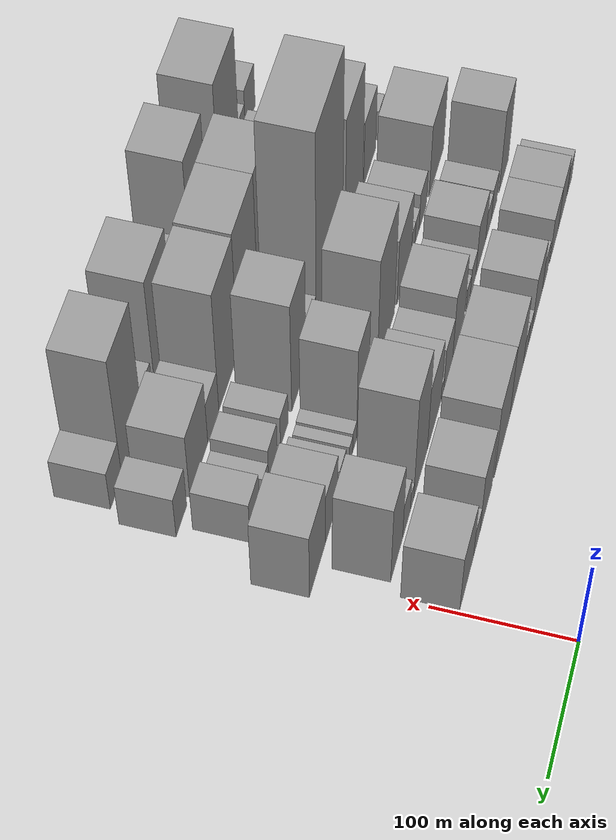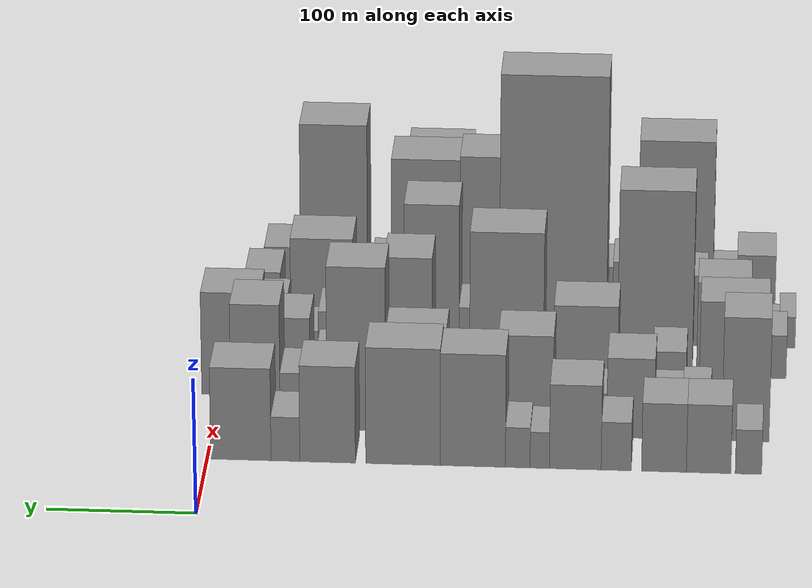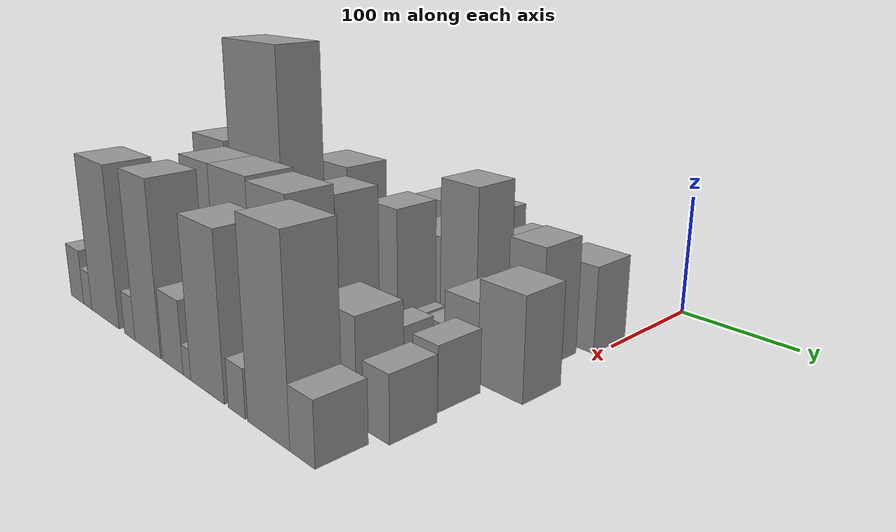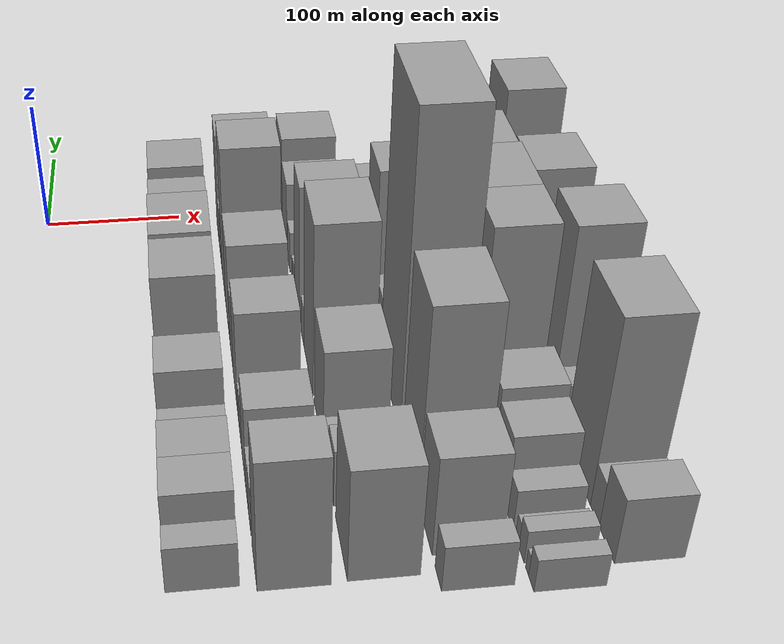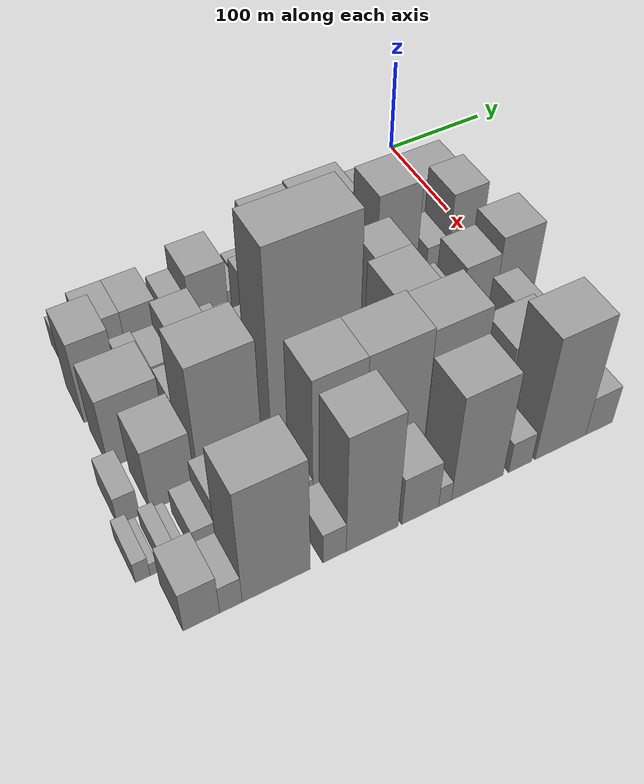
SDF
<sdf version="1.6">
 <world name="default">
  <model name="building_15">
   <static>1</static>
   <pose>100.0000 -365.7893 0 0.000000 0.000000 0.000000</pose>
   <link name="link">
    <pose>0 0 16.50 0 0 0</pose>
    <collision name="collision"><geometry><box><size>40.0000 17.7125 33.0000</size></box></geometry></collision>
    <visual name="visual">
     <cast_shadows>0</cast_shadows>
     <geometry><box><size>40.0000 17.7125 33.0000</size></box></geometry>
     <material>
      <script>
       <uri>model://grey_wall/materials/scripts</uri>
       <uri>model://grey_wall/materials/textures</uri>
       <name>vrc/grey_wall</name>
      </script>
     </material>
    </visual>
   </link>
  </model>
  <model name="building_16">
   <static>1</static>
   <pose>100.0000 -338.9634 0 0.000000 0.000000 0.000000</pose>
   <link name="link">
    <pose>0 0 25.50 0 0 0</pose>
    <collision name="collision"><geometry><box><size>40.0000 29.9394 51.0000</size></box></geometry></collision>
    <visual name="visual">
     <cast_shadows>0</cast_shadows>
     <geometry><box><size>40.0000 29.9394 51.0000</size></box></geometry>
     <material>
      <script>
       <uri>model://grey_wall/materials/scripts</uri>
       <uri>model://grey_wall/materials/textures</uri>
       <name>vrc/grey_wall</name>
      </script>
     </material>
    </visual>
   </link>
  </model>
  <model name="building_17">
   <static>1</static>
   <pose>100.0000 -308.8992 0 0.000000 0.000000 0.000000</pose>
   <link name="link">
    <pose>0 0 25.50 0 0 0</pose>
    <collision name="collision"><geometry><box><size>40.0000 30.1890 51.0000</size></box></geometry></collision>
    <visual name="visual">
     <cast_shadows>0</cast_shadows>
     <geometry><box><size>40.0000 30.1890 51.0000</size></box></geometry>
     <material>
      <script>
       <uri>model://grey_wall/materials/scripts</uri>
       <uri>model://grey_wall/materials/textures</uri>
       <name>vrc/grey_wall</name>
      </script>
     </material>
    </visual>
   </link>
  </model>
  <model name="building_18">
   <static>1</static>
   <pose>100.0000 -276.6746 0 0.000000 0.000000 0.000000</pose>
   <link name="link">
    <pose>0 0 18.00 0 0 0</pose>
    <collision name="collision"><geometry><box><size>40.0000 20.2602 36.0000</size></box></geometry></collision>
    <visual name="visual">
     <cast_shadows>0</cast_shadows>
     <geometry><box><size>40.0000 20.2602 36.0000</size></box></geometry>
     <material>
      <script>
       <uri>model://grey_wall/materials/scripts</uri>
       <uri>model://grey_wall/materials/textures</uri>
       <name>vrc/grey_wall</name>
      </script>
     </material>
    </visual>
   </link>
  </model>
  <model name="building_19">
   <static>1</static>
   <pose>100.0000 -249.0902 0 0.000000 0.000000 0.000000</pose>
   <link name="link">
    <pose>0 0 31.50 0 0 0</pose>
    <collision name="collision"><geometry><box><size>40.0000 34.9087 63.0000</size></box></geometry></collision>
    <visual name="visual">
     <cast_shadows>0</cast_shadows>
     <geometry><box><size>40.0000 34.9087 63.0000</size></box></geometry>
     <material>
      <script>
       <uri>model://grey_wall/materials/scripts</uri>
       <uri>model://grey_wall/materials/textures</uri>
       <name>vrc/grey_wall</name>
      </script>
     </material>
    </visual>
   </link>
  </model>
  <model name="building_20">
   <static>1</static>
   <pose>100.0000 -225.1248 0 0.000000 0.000000 0.000000</pose>
   <link name="link">
    <pose>0 0 13.50 0 0 0</pose>
    <collision name="collision"><geometry><box><size>40.0000 13.0221 27.0000</size></box></geometry></collision>
    <visual name="visual">
     <cast_shadows>0</cast_shadows>
     <geometry><box><size>40.0000 13.0221 27.0000</size></box></geometry>
     <material>
      <script>
       <uri>model://grey_wall/materials/scripts</uri>
       <uri>model://grey_wall/materials/textures</uri>
       <name>vrc/grey_wall</name>
      </script>
     </material>
    </visual>
   </link>
  </model>
  <model name="building_21">
   <static>1</static>
   <pose>100.0000 -210.2478 0 0.000000 0.000000 0.000000</pose>
   <link name="link">
    <pose>0 0 15.00 0 0 0</pose>
    <collision name="collision"><geometry><box><size>40.0000 16.7318 30.0000</size></box></geometry></collision>
    <visual name="visual">
     <cast_shadows>0</cast_shadows>
     <geometry><box><size>40.0000 16.7318 30.0000</size></box></geometry>
     <material>
      <script>
       <uri>model://grey_wall/materials/scripts</uri>
       <uri>model://grey_wall/materials/textures</uri>
       <name>vrc/grey_wall</name>
      </script>
     </material>
    </visual>
   </link>
  </model>
  <model name="building_22">
   <static>1</static>
   <pose>100.0000 -179.8507 0 0.000000 0.000000 0.000000</pose>
   <link name="link">
    <pose>0 0 42.00 0 0 0</pose>
    <collision name="collision"><geometry><box><size>40.0000 44.0624 84.0000</size></box></geometry></collision>
    <visual name="visual">
     <cast_shadows>0</cast_shadows>
     <geometry><box><size>40.0000 44.0624 84.0000</size></box></geometry>
     <material>
      <script>
       <uri>model://grey_wall/materials/scripts</uri>
       <uri>model://grey_wall/materials/textures</uri>
       <name>vrc/grey_wall</name>
      </script>
     </material>
    </visual>
   </link>
  </model>
  <model name="building_23">
   <static>1</static>
   <pose>100.0000 -132.6121 0 0.000000 0.000000 0.000000</pose>
   <link name="link">
    <pose>0 0 43.50 0 0 0</pose>
    <collision name="collision"><geometry><box><size>40.0000 50.4148 87.0000</size></box></geometry></collision>
    <visual name="visual">
     <cast_shadows>0</cast_shadows>
     <geometry><box><size>40.0000 50.4148 87.0000</size></box></geometry>
     <material>
      <script>
       <uri>model://grey_wall/materials/scripts</uri>
       <uri>model://grey_wall/materials/textures</uri>
       <name>vrc/grey_wall</name>
      </script>
     </material>
    </visual>
   </link>
  </model>
  <model name="building_24">
   <static>1</static>
   <pose>100.0000 -81.5490 0 0.000000 0.000000 0.000000</pose>
   <link name="link">
    <pose>0 0 36.00 0 0 0</pose>
    <collision name="collision"><geometry><box><size>40.0000 37.7114 72.0000</size></box></geometry></collision>
    <visual name="visual">
     <cast_shadows>0</cast_shadows>
     <geometry><box><size>40.0000 37.7114 72.0000</size></box></geometry>
     <material>
      <script>
       <uri>model://grey_wall/materials/scripts</uri>
       <uri>model://grey_wall/materials/textures</uri>
       <name>vrc/grey_wall</name>
      </script>
     </material>
    </visual>
   </link>
  </model>
  <model name="building_25">
   <static>1</static>
   <pose>100.0000 -52.9410 0 0.000000 0.000000 0.000000</pose>
   <link name="link">
    <pose>0 0 16.50 0 0 0</pose>
    <collision name="collision"><geometry><box><size>40.0000 19.5046 33.0000</size></box></geometry></collision>
    <visual name="visual">
     <cast_shadows>0</cast_shadows>
     <geometry><box><size>40.0000 19.5046 33.0000</size></box></geometry>
     <material>
      <script>
       <uri>model://grey_wall/materials/scripts</uri>
       <uri>model://grey_wall/materials/textures</uri>
       <name>vrc/grey_wall</name>
      </script>
     </material>
    </visual>
   </link>
  </model>
  <model name="building_26">
   <static>1</static>
   <pose>100.0000 -22.6887 0 0.000000 0.000000 0.000000</pose>
   <link name="link">
    <pose>0 0 34.50 0 0 0</pose>
    <collision name="collision"><geometry><box><size>40.0000 40.9999 69.0000</size></box></geometry></collision>
    <visual name="visual">
     <cast_shadows>0</cast_shadows>
     <geometry><box><size>40.0000 40.9999 69.0000</size></box></geometry>
     <material>
      <script>
       <uri>model://grey_wall/materials/scripts</uri>
       <uri>model://grey_wall/materials/textures</uri>
       <name>vrc/grey_wall</name>
      </script>
     </material>
    </visual>
   </link>
  </model>
  <model name="building_62">
   <static>1</static>
   <pose>149.0000 -363.1869 0 0.000000 0.000000 0.000000</pose>
   <link name="link">
    <pose>0 0 46.50 0 0 0</pose>
    <collision name="collision"><geometry><box><size>40.0000 32.1077 93.0000</size></box></geometry></collision>
    <visual name="visual">
     <cast_shadows>0</cast_shadows>
     <geometry><box><size>40.0000 32.1077 93.0000</size></box></geometry>
     <material>
      <script>
       <uri>model://grey_wall/materials/scripts</uri>
       <uri>model://grey_wall/materials/textures</uri>
       <name>vrc/grey_wall</name>
      </script>
     </material>
    </visual>
   </link>
  </model>
  <model name="building_63">
   <static>1</static>
   <pose>149.0000 -329.6222 0 0.000000 0.000000 0.000000</pose>
   <link name="link">
    <pose>0 0 18.00 0 0 0</pose>
    <collision name="collision"><geometry><box><size>40.0000 19.0217 36.0000</size></box></geometry></collision>
    <visual name="visual">
     <cast_shadows>0</cast_shadows>
     <geometry><box><size>40.0000 19.0217 36.0000</size></box></geometry>
     <material>
      <script>
       <uri>model://grey_wall/materials/scripts</uri>
       <uri>model://grey_wall/materials/textures</uri>
       <name>vrc/grey_wall</name>
      </script>
     </material>
    </visual>
   </link>
  </model>
  <model name="building_64">
   <static>1</static>
   <pose>149.0000 -310.6363 0 0.000000 0.000000 0.000000</pose>
   <link name="link">
    <pose>0 0 16.50 0 0 0</pose>
    <collision name="collision"><geometry><box><size>40.0000 18.9501 33.0000</size></box></geometry></collision>
    <visual name="visual">
     <cast_shadows>0</cast_shadows>
     <geometry><box><size>40.0000 18.9501 33.0000</size></box></geometry>
     <material>
      <script>
       <uri>model://grey_wall/materials/scripts</uri>
       <uri>model://grey_wall/materials/textures</uri>
       <name>vrc/grey_wall</name>
      </script>
     </material>
    </visual>
   </link>
  </model>
  <model name="building_65">
   <static>1</static>
   <pose>149.0000 -284.9238 0 0.000000 0.000000 0.000000</pose>
   <link name="link">
    <pose>0 0 30.00 0 0 0</pose>
    <collision name="collision"><geometry><box><size>40.0000 32.4750 60.0000</size></box></geometry></collision>
    <visual name="visual">
     <cast_shadows>0</cast_shadows>
     <geometry><box><size>40.0000 32.4750 60.0000</size></box></geometry>
     <material>
      <script>
       <uri>model://grey_wall/materials/scripts</uri>
       <uri>model://grey_wall/materials/textures</uri>
       <name>vrc/grey_wall</name>
      </script>
     </material>
    </visual>
   </link>
  </model>
  <model name="building_66">
   <static>1</static>
   <pose>149.0000 -259.5298 0 0.000000 0.000000 0.000000</pose>
   <link name="link">
    <pose>0 0 16.50 0 0 0</pose>
    <collision name="collision"><geometry><box><size>40.0000 18.3131 33.0000</size></box></geometry></collision>
    <visual name="visual">
     <cast_shadows>0</cast_shadows>
     <geometry><box><size>40.0000 18.3131 33.0000</size></box></geometry>
     <material>
      <script>
       <uri>model://grey_wall/materials/scripts</uri>
       <uri>model://grey_wall/materials/textures</uri>
       <name>vrc/grey_wall</name>
      </script>
     </material>
    </visual>
   </link>
  </model>
  <model name="building_67">
   <static>1</static>
   <pose>149.0000 -243.7359 0 0.000000 0.000000 0.000000</pose>
   <link name="link">
    <pose>0 0 13.50 0 0 0</pose>
    <collision name="collision"><geometry><box><size>40.0000 13.2746 27.0000</size></box></geometry></collision>
    <visual name="visual">
     <cast_shadows>0</cast_shadows>
     <geometry><box><size>40.0000 13.2746 27.0000</size></box></geometry>
     <material>
      <script>
       <uri>model://grey_wall/materials/scripts</uri>
       <uri>model://grey_wall/materials/textures</uri>
       <name>vrc/grey_wall</name>
      </script>
     </material>
    </visual>
   </link>
  </model>
  <model name="building_68">
   <static>1</static>
   <pose>149.0000 -213.2330 0 0.000000 0.000000 0.000000</pose>
   <link name="link">
    <pose>0 0 37.50 0 0 0</pose>
    <collision name="collision"><geometry><box><size>40.0000 37.7311 75.0000</size></box></geometry></collision>
    <visual name="visual">
     <cast_shadows>0</cast_shadows>
     <geometry><box><size>40.0000 37.7311 75.0000</size></box></geometry>
     <material>
      <script>
       <uri>model://grey_wall/materials/scripts</uri>
       <uri>model://grey_wall/materials/textures</uri>
       <name>vrc/grey_wall</name>
      </script>
     </material>
    </visual>
   </link>
  </model>
  <model name="building_69">
   <static>1</static>
   <pose>149.0000 -180.6209 0 0.000000 0.000000 0.000000</pose>
   <link name="link">
    <pose>0 0 25.50 0 0 0</pose>
    <collision name="collision"><geometry><box><size>40.0000 27.4931 51.0000</size></box></geometry></collision>
    <visual name="visual">
     <cast_shadows>0</cast_shadows>
     <geometry><box><size>40.0000 27.4931 51.0000</size></box></geometry>
     <material>
      <script>
       <uri>model://grey_wall/materials/scripts</uri>
       <uri>model://grey_wall/materials/textures</uri>
       <name>vrc/grey_wall</name>
      </script>
     </material>
    </visual>
   </link>
  </model>
  <model name="building_70">
   <static>1</static>
   <pose>149.0000 -162.8369 0 0.000000 0.000000 0.000000</pose>
   <link name="link">
    <pose>0 0 9.00 0 0 0</pose>
    <collision name="collision"><geometry><box><size>40.0000 8.0749 18.0000</size></box></geometry></collision>
    <visual name="visual">
     <cast_shadows>0</cast_shadows>
     <geometry><box><size>40.0000 8.0749 18.0000</size></box></geometry>
     <material>
      <script>
       <uri>model://grey_wall/materials/scripts</uri>
       <uri>model://grey_wall/materials/textures</uri>
       <name>vrc/grey_wall</name>
      </script>
     </material>
    </visual>
   </link>
  </model>
  <model name="building_71">
   <static>1</static>
   <pose>149.0000 -138.1704 0 0.000000 0.000000 0.000000</pose>
   <link name="link">
    <pose>0 0 37.50 0 0 0</pose>
    <collision name="collision"><geometry><box><size>40.0000 41.2582 75.0000</size></box></geometry></collision>
    <visual name="visual">
     <cast_shadows>0</cast_shadows>
     <geometry><box><size>40.0000 41.2582 75.0000</size></box></geometry>
     <material>
      <script>
       <uri>model://grey_wall/materials/scripts</uri>
       <uri>model://grey_wall/materials/textures</uri>
       <name>vrc/grey_wall</name>
      </script>
     </material>
    </visual>
   </link>
  </model>
  <model name="building_72">
   <static>1</static>
   <pose>149.0000 -97.4613 0 0.000000 0.000000 0.000000</pose>
   <link name="link">
    <pose>0 0 61.50 0 0 0</pose>
    <collision name="collision"><geometry><box><size>40.0000 40.1599 123.0000</size></box></geometry></collision>
    <visual name="visual">
     <cast_shadows>0</cast_shadows>
     <geometry><box><size>40.0000 40.1599 123.0000</size></box></geometry>
     <material>
      <script>
       <uri>model://grey_wall/materials/scripts</uri>
       <uri>model://grey_wall/materials/textures</uri>
       <name>vrc/grey_wall</name>
      </script>
     </material>
    </visual>
   </link>
  </model>
  <model name="building_73">
   <static>1</static>
   <pose>149.0000 -72.3114 0 0.000000 0.000000 0.000000</pose>
   <link name="link">
    <pose>0 0 10.50 0 0 0</pose>
    <collision name="collision"><geometry><box><size>40.0000 10.1401 21.0000</size></box></geometry></collision>
    <visual name="visual">
     <cast_shadows>0</cast_shadows>
     <geometry><box><size>40.0000 10.1401 21.0000</size></box></geometry>
     <material>
      <script>
       <uri>model://grey_wall/materials/scripts</uri>
       <uri>model://grey_wall/materials/textures</uri>
       <name>vrc/grey_wall</name>
      </script>
     </material>
    </visual>
   </link>
  </model>
  <model name="building_74">
   <static>1</static>
   <pose>149.0000 -56.3199 0 0.000000 0.000000 0.000000</pose>
   <link name="link">
    <pose>0 0 21.00 0 0 0</pose>
    <collision name="collision"><geometry><box><size>40.0000 21.8428 42.0000</size></box></geometry></collision>
    <visual name="visual">
     <cast_shadows>0</cast_shadows>
     <geometry><box><size>40.0000 21.8428 42.0000</size></box></geometry>
     <material>
      <script>
       <uri>model://grey_wall/materials/scripts</uri>
       <uri>model://grey_wall/materials/textures</uri>
       <name>vrc/grey_wall</name>
      </script>
     </material>
    </visual>
   </link>
  </model>
  <model name="building_75">
   <static>1</static>
   <pose>149.0000 -28.4880 0 0.000000 0.000000 0.000000</pose>
   <link name="link">
    <pose>0 0 46.50 0 0 0</pose>
    <collision name="collision"><geometry><box><size>40.0000 33.8210 93.0000</size></box></geometry></collision>
    <visual name="visual">
     <cast_shadows>0</cast_shadows>
     <geometry><box><size>40.0000 33.8210 93.0000</size></box></geometry>
     <material>
      <script>
       <uri>model://grey_wall/materials/scripts</uri>
       <uri>model://grey_wall/materials/textures</uri>
       <name>vrc/grey_wall</name>
      </script>
     </material>
    </visual>
   </link>
  </model>
  <model name="building_113">
   <static>1</static>
   <pose>198.0000 -354.2277 0 0.000000 0.000000 0.000000</pose>
   <link name="link">
    <pose>0 0 40.50 0 0 0</pose>
    <collision name="collision"><geometry><box><size>40.0000 47.3804 81.0000</size></box></geometry></collision>
    <visual name="visual">
     <cast_shadows>0</cast_shadows>
     <geometry><box><size>40.0000 47.3804 81.0000</size></box></geometry>
     <material>
      <script>
       <uri>model://grey_wall/materials/scripts</uri>
       <uri>model://grey_wall/materials/textures</uri>
       <name>vrc/grey_wall</name>
      </script>
     </material>
    </visual>
   </link>
  </model>
  <model name="building_114">
   <static>1</static>
   <pose>198.0000 -310.0028 0 0.000000 0.000000 0.000000</pose>
   <link name="link">
    <pose>0 0 21.00 0 0 0</pose>
    <collision name="collision"><geometry><box><size>40.0000 23.0694 42.0000</size></box></geometry></collision>
    <visual name="visual">
     <cast_shadows>0</cast_shadows>
     <geometry><box><size>40.0000 23.0694 42.0000</size></box></geometry>
     <material>
      <script>
       <uri>model://grey_wall/materials/scripts</uri>
       <uri>model://grey_wall/materials/textures</uri>
       <name>vrc/grey_wall</name>
      </script>
     </material>
    </visual>
   </link>
  </model>
  <model name="building_115">
   <static>1</static>
   <pose>198.0000 -292.0962 0 0.000000 0.000000 0.000000</pose>
   <link name="link">
    <pose>0 0 13.50 0 0 0</pose>
    <collision name="collision"><geometry><box><size>40.0000 12.7439 27.0000</size></box></geometry></collision>
    <visual name="visual">
     <cast_shadows>0</cast_shadows>
     <geometry><box><size>40.0000 12.7439 27.0000</size></box></geometry>
     <material>
      <script>
       <uri>model://grey_wall/materials/scripts</uri>
       <uri>model://grey_wall/materials/textures</uri>
       <name>vrc/grey_wall</name>
      </script>
     </material>
    </visual>
   </link>
  </model>
  <model name="building_116">
   <static>1</static>
   <pose>198.0000 -280.1377 0 0.000000 0.000000 0.000000</pose>
   <link name="link">
    <pose>0 0 13.50 0 0 0</pose>
    <collision name="collision"><geometry><box><size>40.0000 11.1730 27.0000</size></box></geometry></collision>
    <visual name="visual">
     <cast_shadows>0</cast_shadows>
     <geometry><box><size>40.0000 11.1730 27.0000</size></box></geometry>
     <material>
      <script>
       <uri>model://grey_wall/materials/scripts</uri>
       <uri>model://grey_wall/materials/textures</uri>
       <name>vrc/grey_wall</name>
      </script>
     </material>
    </visual>
   </link>
  </model>
  <model name="building_117">
   <static>1</static>
   <pose>198.0000 -252.4284 0 0.000000 0.000000 0.000000</pose>
   <link name="link">
    <pose>0 0 37.50 0 0 0</pose>
    <collision name="collision"><geometry><box><size>40.0000 44.2457 75.0000</size></box></geometry></collision>
    <visual name="visual">
     <cast_shadows>0</cast_shadows>
     <geometry><box><size>40.0000 44.2457 75.0000</size></box></geometry>
     <material>
      <script>
       <uri>model://grey_wall/materials/scripts</uri>
       <uri>model://grey_wall/materials/textures</uri>
       <name>vrc/grey_wall</name>
      </script>
     </material>
    </visual>
   </link>
  </model>
  <model name="building_118">
   <static>1</static>
   <pose>198.0000 -197.8509 0 0.000000 0.000000 0.000000</pose>
   <link name="link">
    <pose>0 0 64.50 0 0 0</pose>
    <collision name="collision"><geometry><box><size>40.0000 50.9091 129.0000</size></box></geometry></collision>
    <visual name="visual">
     <cast_shadows>0</cast_shadows>
     <geometry><box><size>40.0000 50.9091 129.0000</size></box></geometry>
     <material>
      <script>
       <uri>model://grey_wall/materials/scripts</uri>
       <uri>model://grey_wall/materials/textures</uri>
       <name>vrc/grey_wall</name>
      </script>
     </material>
    </visual>
   </link>
  </model>
  <model name="building_119">
   <static>1</static>
   <pose>198.0000 -163.4503 0 0.000000 0.000000 0.000000</pose>
   <link name="link">
    <pose>0 0 15.00 0 0 0</pose>
    <collision name="collision"><geometry><box><size>40.0000 17.8922 30.0000</size></box></geometry></collision>
    <visual name="visual">
     <cast_shadows>0</cast_shadows>
     <geometry><box><size>40.0000 17.8922 30.0000</size></box></geometry>
     <material>
      <script>
       <uri>model://grey_wall/materials/scripts</uri>
       <uri>model://grey_wall/materials/textures</uri>
       <name>vrc/grey_wall</name>
      </script>
     </material>
    </visual>
   </link>
  </model>
  <model name="building_120">
   <static>1</static>
   <pose>198.0000 -130.0346 0 0.000000 0.000000 0.000000</pose>
   <link name="link">
    <pose>0 0 54.00 0 0 0</pose>
    <collision name="collision"><geometry><box><size>40.0000 32.9392 108.0000</size></box></geometry></collision>
    <visual name="visual">
     <cast_shadows>0</cast_shadows>
     <geometry><box><size>40.0000 32.9392 108.0000</size></box></geometry>
     <material>
      <script>
       <uri>model://grey_wall/materials/scripts</uri>
       <uri>model://grey_wall/materials/textures</uri>
       <name>vrc/grey_wall</name>
      </script>
     </material>
    </visual>
   </link>
  </model>
  <model name="building_121">
   <static>1</static>
   <pose>198.0000 -107.9346 0 0.000000 0.000000 0.000000</pose>
   <link name="link">
    <pose>0 0 12.00 0 0 0</pose>
    <collision name="collision"><geometry><box><size>40.0000 11.2608 24.0000</size></box></geometry></collision>
    <visual name="visual">
     <cast_shadows>0</cast_shadows>
     <geometry><box><size>40.0000 11.2608 24.0000</size></box></geometry>
     <material>
      <script>
       <uri>model://grey_wall/materials/scripts</uri>
       <uri>model://grey_wall/materials/textures</uri>
       <name>vrc/grey_wall</name>
      </script>
     </material>
    </visual>
   </link>
  </model>
  <model name="building_122">
   <static>1</static>
   <pose>198.0000 -97.7807 0 0.000000 0.000000 0.000000</pose>
   <link name="link">
    <pose>0 0 10.50 0 0 0</pose>
    <collision name="collision"><geometry><box><size>40.0000 9.0470 21.0000</size></box></geometry></collision>
    <visual name="visual">
     <cast_shadows>0</cast_shadows>
     <geometry><box><size>40.0000 9.0470 21.0000</size></box></geometry>
     <material>
      <script>
       <uri>model://grey_wall/materials/scripts</uri>
       <uri>model://grey_wall/materials/textures</uri>
       <name>vrc/grey_wall</name>
      </script>
     </material>
    </visual>
   </link>
  </model>
  <model name="building_123">
   <static>1</static>
   <pose>198.0000 -75.1374 0 0.000000 0.000000 0.000000</pose>
   <link name="link">
    <pose>0 0 16.50 0 0 0</pose>
    <collision name="collision"><geometry><box><size>40.0000 18.2395 33.0000</size></box></geometry></collision>
    <visual name="visual">
     <cast_shadows>0</cast_shadows>
     <geometry><box><size>40.0000 18.2395 33.0000</size></box></geometry>
     <material>
      <script>
       <uri>model://grey_wall/materials/scripts</uri>
       <uri>model://grey_wall/materials/textures</uri>
       <name>vrc/grey_wall</name>
      </script>
     </material>
    </visual>
   </link>
  </model>
  <model name="building_124">
   <static>1</static>
   <pose>198.0000 -44.9687 0 0.000000 0.000000 0.000000</pose>
   <link name="link">
    <pose>0 0 30.00 0 0 0</pose>
    <collision name="collision"><geometry><box><size>40.0000 34.0979 60.0000</size></box></geometry></collision>
    <visual name="visual">
     <cast_shadows>0</cast_shadows>
     <geometry><box><size>40.0000 34.0979 60.0000</size></box></geometry>
     <material>
      <script>
       <uri>model://grey_wall/materials/scripts</uri>
       <uri>model://grey_wall/materials/textures</uri>
       <name>vrc/grey_wall</name>
      </script>
     </material>
    </visual>
   </link>
  </model>
  <model name="building_125">
   <static>1</static>
   <pose>198.0000 -7.3952 0 0.000000 0.000000 0.000000</pose>
   <link name="link">
    <pose>0 0 39.00 0 0 0</pose>
    <collision name="collision"><geometry><box><size>40.0000 41.0492 78.0000</size></box></geometry></collision>
    <visual name="visual">
     <cast_shadows>0</cast_shadows>
     <geometry><box><size>40.0000 41.0492 78.0000</size></box></geometry>
     <material>
      <script>
       <uri>model://grey_wall/materials/scripts</uri>
       <uri>model://grey_wall/materials/textures</uri>
       <name>vrc/grey_wall</name>
      </script>
     </material>
    </visual>
   </link>
  </model>
  <model name="building_160">
   <static>1</static>
   <pose>247.0000 -381.7322 0 0.000000 0.000000 0.000000</pose>
   <link name="link">
    <pose>0 0 16.50 0 0 0</pose>
    <collision name="collision"><geometry><box><size>40.0000 17.4340 33.0000</size></box></geometry></collision>
    <visual name="visual">
     <cast_shadows>0</cast_shadows>
     <geometry><box><size>40.0000 17.4340 33.0000</size></box></geometry>
     <material>
      <script>
       <uri>model://grey_wall/materials/scripts</uri>
       <uri>model://grey_wall/materials/textures</uri>
       <name>vrc/grey_wall</name>
      </script>
     </material>
    </visual>
   </link>
  </model>
  <model name="building_161">
   <static>1</static>
   <pose>247.0000 -346.5649 0 0.000000 0.000000 0.000000</pose>
   <link name="link">
    <pose>0 0 36.00 0 0 0</pose>
    <collision name="collision"><geometry><box><size>40.0000 36.9006 72.0000</size></box></geometry></collision>
    <visual name="visual">
     <cast_shadows>0</cast_shadows>
     <geometry><box><size>40.0000 36.9006 72.0000</size></box></geometry>
     <material>
      <script>
       <uri>model://grey_wall/materials/scripts</uri>
       <uri>model://grey_wall/materials/textures</uri>
       <name>vrc/grey_wall</name>
      </script>
     </material>
    </visual>
   </link>
  </model>
  <model name="building_162">
   <static>1</static>
   <pose>247.0000 -299.0316 0 0.000000 0.000000 0.000000</pose>
   <link name="link">
    <pose>0 0 70.50 0 0 0</pose>
    <collision name="collision"><geometry><box><size>40.0000 52.1660 141.0000</size></box></geometry></collision>
    <visual name="visual">
     <cast_shadows>0</cast_shadows>
     <geometry><box><size>40.0000 52.1660 141.0000</size></box></geometry>
     <material>
      <script>
       <uri>model://grey_wall/materials/scripts</uri>
       <uri>model://grey_wall/materials/textures</uri>
       <name>vrc/grey_wall</name>
      </script>
     </material>
    </visual>
   </link>
  </model>
  <model name="building_163">
   <static>1</static>
   <pose>247.0000 -227.7428 0 0.000000 0.000000 0.000000</pose>
   <link name="link">
    <pose>0 0 112.50 0 0 0</pose>
    <collision name="collision"><geometry><box><size>40.0000 74.4118 225.0000</size></box></geometry></collision>
    <visual name="visual">
     <cast_shadows>0</cast_shadows>
     <geometry><box><size>40.0000 74.4118 225.0000</size></box></geometry>
     <material>
      <script>
       <uri>model://grey_wall/materials/scripts</uri>
       <uri>model://grey_wall/materials/textures</uri>
       <name>vrc/grey_wall</name>
      </script>
     </material>
    </visual>
   </link>
  </model>
  <model name="building_164">
   <static>1</static>
   <pose>247.0000 -176.4259 0 0.000000 0.000000 0.000000</pose>
   <link name="link">
    <pose>0 0 24.00 0 0 0</pose>
    <collision name="collision"><geometry><box><size>40.0000 28.2220 48.0000</size></box></geometry></collision>
    <visual name="visual">
     <cast_shadows>0</cast_shadows>
     <geometry><box><size>40.0000 28.2220 48.0000</size></box></geometry>
     <material>
      <script>
       <uri>model://grey_wall/materials/scripts</uri>
       <uri>model://grey_wall/materials/textures</uri>
       <name>vrc/grey_wall</name>
      </script>
     </material>
    </visual>
   </link>
  </model>
  <model name="building_165">
   <static>1</static>
   <pose>247.0000 -143.2206 0 0.000000 0.000000 0.000000</pose>
   <link name="link">
    <pose>0 0 63.00 0 0 0</pose>
    <collision name="collision"><geometry><box><size>40.0000 38.1886 126.0000</size></box></geometry></collision>
    <visual name="visual">
     <cast_shadows>0</cast_shadows>
     <geometry><box><size>40.0000 38.1886 126.0000</size></box></geometry>
     <material>
      <script>
       <uri>model://grey_wall/materials/scripts</uri>
       <uri>model://grey_wall/materials/textures</uri>
       <name>vrc/grey_wall</name>
      </script>
     </material>
    </visual>
   </link>
  </model>
  <model name="building_166">
   <static>1</static>
   <pose>247.0000 -104.8107 0 0.000000 0.000000 0.000000</pose>
   <link name="link">
    <pose>0 0 18.00 0 0 0</pose>
    <collision name="collision"><geometry><box><size>40.0000 20.6312 36.0000</size></box></geometry></collision>
    <visual name="visual">
     <cast_shadows>0</cast_shadows>
     <geometry><box><size>40.0000 20.6312 36.0000</size></box></geometry>
     <material>
      <script>
       <uri>model://grey_wall/materials/scripts</uri>
       <uri>model://grey_wall/materials/textures</uri>
       <name>vrc/grey_wall</name>
      </script>
     </material>
    </visual>
   </link>
  </model>
  <model name="building_167">
   <static>1</static>
   <pose>247.0000 -75.2744 0 0.000000 0.000000 0.000000</pose>
   <link name="link">
    <pose>0 0 21.00 0 0 0</pose>
    <collision name="collision"><geometry><box><size>40.0000 22.4414 42.0000</size></box></geometry></collision>
    <visual name="visual">
     <cast_shadows>0</cast_shadows>
     <geometry><box><size>40.0000 22.4414 42.0000</size></box></geometry>
     <material>
      <script>
       <uri>model://grey_wall/materials/scripts</uri>
       <uri>model://grey_wall/materials/textures</uri>
       <name>vrc/grey_wall</name>
      </script>
     </material>
    </visual>
   </link>
  </model>
  <model name="building_168">
   <static>1</static>
   <pose>247.0000 -57.4160 0 0.000000 0.000000 0.000000</pose>
   <link name="link">
    <pose>0 0 13.50 0 0 0</pose>
    <collision name="collision"><geometry><box><size>40.0000 13.2754 27.0000</size></box></geometry></collision>
    <visual name="visual">
     <cast_shadows>0</cast_shadows>
     <geometry><box><size>40.0000 13.2754 27.0000</size></box></geometry>
     <material>
      <script>
       <uri>model://grey_wall/materials/scripts</uri>
       <uri>model://grey_wall/materials/textures</uri>
       <name>vrc/grey_wall</name>
      </script>
     </material>
    </visual>
   </link>
  </model>
  <model name="building_169">
   <static>1</static>
   <pose>247.0000 -29.4178 0 0.000000 0.000000 0.000000</pose>
   <link name="link">
    <pose>0 0 24.00 0 0 0</pose>
    <collision name="collision"><geometry><box><size>40.0000 24.7210 48.0000</size></box></geometry></collision>
    <visual name="visual">
     <cast_shadows>0</cast_shadows>
     <geometry><box><size>40.0000 24.7210 48.0000</size></box></geometry>
     <material>
      <script>
       <uri>model://grey_wall/materials/scripts</uri>
       <uri>model://grey_wall/materials/textures</uri>
       <name>vrc/grey_wall</name>
      </script>
     </material>
    </visual>
   </link>
  </model>
  <model name="building_206">
   <static>1</static>
   <pose>296.0000 -390.9785 0 0.000000 0.000000 0.000000</pose>
   <link name="link">
    <pose>0 0 12.00 0 0 0</pose>
    <collision name="collision"><geometry><box><size>40.0000 11.1629 24.0000</size></box></geometry></collision>
    <visual name="visual">
     <cast_shadows>0</cast_shadows>
     <geometry><box><size>40.0000 11.1629 24.0000</size></box></geometry>
     <material>
      <script>
       <uri>model://grey_wall/materials/scripts</uri>
       <uri>model://grey_wall/materials/textures</uri>
       <name>vrc/grey_wall</name>
      </script>
     </material>
    </visual>
   </link>
  </model>
  <model name="building_207">
   <static>1</static>
   <pose>296.0000 -382.2662 0 0.000000 0.000000 0.000000</pose>
   <link name="link">
    <pose>0 0 7.50 0 0 0</pose>
    <collision name="collision"><geometry><box><size>40.0000 6.2617 15.0000</size></box></geometry></collision>
    <visual name="visual">
     <cast_shadows>0</cast_shadows>
     <geometry><box><size>40.0000 6.2617 15.0000</size></box></geometry>
     <material>
      <script>
       <uri>model://grey_wall/materials/scripts</uri>
       <uri>model://grey_wall/materials/textures</uri>
       <name>vrc/grey_wall</name>
      </script>
     </material>
    </visual>
   </link>
  </model>
  <model name="building_208">
   <static>1</static>
   <pose>296.0000 -370.2805 0 0.000000 0.000000 0.000000</pose>
   <link name="link">
    <pose>0 0 12.00 0 0 0</pose>
    <collision name="collision"><geometry><box><size>40.0000 11.7098 24.0000</size></box></geometry></collision>
    <visual name="visual">
     <cast_shadows>0</cast_shadows>
     <geometry><box><size>40.0000 11.7098 24.0000</size></box></geometry>
     <material>
      <script>
       <uri>model://grey_wall/materials/scripts</uri>
       <uri>model://grey_wall/materials/textures</uri>
       <name>vrc/grey_wall</name>
      </script>
     </material>
    </visual>
   </link>
  </model>
  <model name="building_209">
   <static>1</static>
   <pose>296.0000 -360.5375 0 0.000000 0.000000 0.000000</pose>
   <link name="link">
    <pose>0 0 9.00 0 0 0</pose>
    <collision name="collision"><geometry><box><size>40.0000 7.7762 18.0000</size></box></geometry></collision>
    <visual name="visual">
     <cast_shadows>0</cast_shadows>
     <geometry><box><size>40.0000 7.7762 18.0000</size></box></geometry>
     <material>
      <script>
       <uri>model://grey_wall/materials/scripts</uri>
       <uri>model://grey_wall/materials/textures</uri>
       <name>vrc/grey_wall</name>
      </script>
     </material>
    </visual>
   </link>
  </model>
  <model name="building_210">
   <static>1</static>
   <pose>296.0000 -342.8736 0 0.000000 0.000000 0.000000</pose>
   <link name="link">
    <pose>0 0 15.00 0 0 0</pose>
    <collision name="collision"><geometry><box><size>40.0000 17.5516 30.0000</size></box></geometry></collision>
    <visual name="visual">
     <cast_shadows>0</cast_shadows>
     <geometry><box><size>40.0000 17.5516 30.0000</size></box></geometry>
     <material>
      <script>
       <uri>model://grey_wall/materials/scripts</uri>
       <uri>model://grey_wall/materials/textures</uri>
       <name>vrc/grey_wall</name>
      </script>
     </material>
    </visual>
   </link>
  </model>
  <model name="building_211">
   <static>1</static>
   <pose>296.0000 -318.7526 0 0.000000 0.000000 0.000000</pose>
   <link name="link">
    <pose>0 0 27.00 0 0 0</pose>
    <collision name="collision"><geometry><box><size>40.0000 30.6904 54.0000</size></box></geometry></collision>
    <visual name="visual">
     <cast_shadows>0</cast_shadows>
     <geometry><box><size>40.0000 30.6904 54.0000</size></box></geometry>
     <material>
      <script>
       <uri>model://grey_wall/materials/scripts</uri>
       <uri>model://grey_wall/materials/textures</uri>
       <name>vrc/grey_wall</name>
      </script>
     </material>
    </visual>
   </link>
  </model>
  <model name="building_212">
   <static>1</static>
   <pose>296.0000 -285.6466 0 0.000000 0.000000 0.000000</pose>
   <link name="link">
    <pose>0 0 31.50 0 0 0</pose>
    <collision name="collision"><geometry><box><size>40.0000 35.5216 63.0000</size></box></geometry></collision>
    <visual name="visual">
     <cast_shadows>0</cast_shadows>
     <geometry><box><size>40.0000 35.5216 63.0000</size></box></geometry>
     <material>
      <script>
       <uri>model://grey_wall/materials/scripts</uri>
       <uri>model://grey_wall/materials/textures</uri>
       <name>vrc/grey_wall</name>
      </script>
     </material>
    </visual>
   </link>
  </model>
  <model name="building_213">
   <static>1</static>
   <pose>296.0000 -261.9346 0 0.000000 0.000000 0.000000</pose>
   <link name="link">
    <pose>0 0 13.50 0 0 0</pose>
    <collision name="collision"><geometry><box><size>40.0000 11.9025 27.0000</size></box></geometry></collision>
    <visual name="visual">
     <cast_shadows>0</cast_shadows>
     <geometry><box><size>40.0000 11.9025 27.0000</size></box></geometry>
     <material>
      <script>
       <uri>model://grey_wall/materials/scripts</uri>
       <uri>model://grey_wall/materials/textures</uri>
       <name>vrc/grey_wall</name>
      </script>
     </material>
    </visual>
   </link>
  </model>
  <model name="building_214">
   <static>1</static>
   <pose>296.0000 -234.1979 0 0.000000 0.000000 0.000000</pose>
   <link name="link">
    <pose>0 0 70.50 0 0 0</pose>
    <collision name="collision"><geometry><box><size>40.0000 43.5709 141.0000</size></box></geometry></collision>
    <visual name="visual">
     <cast_shadows>0</cast_shadows>
     <geometry><box><size>40.0000 43.5709 141.0000</size></box></geometry>
     <material>
      <script>
       <uri>model://grey_wall/materials/scripts</uri>
       <uri>model://grey_wall/materials/textures</uri>
       <name>vrc/grey_wall</name>
      </script>
     </material>
    </visual>
   </link>
  </model>
  <model name="building_215">
   <static>1</static>
   <pose>296.0000 -186.3399 0 0.000000 0.000000 0.000000</pose>
   <link name="link">
    <pose>0 0 70.50 0 0 0</pose>
    <collision name="collision"><geometry><box><size>40.0000 52.1451 141.0000</size></box></geometry></collision>
    <visual name="visual">
     <cast_shadows>0</cast_shadows>
     <geometry><box><size>40.0000 52.1451 141.0000</size></box></geometry>
     <material>
      <script>
       <uri>model://grey_wall/materials/scripts</uri>
       <uri>model://grey_wall/materials/textures</uri>
       <name>vrc/grey_wall</name>
      </script>
     </material>
    </visual>
   </link>
  </model>
  <model name="building_216">
   <static>1</static>
   <pose>296.0000 -136.1982 0 0.000000 0.000000 0.000000</pose>
   <link name="link">
    <pose>0 0 69.00 0 0 0</pose>
    <collision name="collision"><geometry><box><size>40.0000 48.1383 138.0000</size></box></geometry></collision>
    <visual name="visual">
     <cast_shadows>0</cast_shadows>
     <geometry><box><size>40.0000 48.1383 138.0000</size></box></geometry>
     <material>
      <script>
       <uri>model://grey_wall/materials/scripts</uri>
       <uri>model://grey_wall/materials/textures</uri>
       <name>vrc/grey_wall</name>
      </script>
     </material>
    </visual>
   </link>
  </model>
  <model name="building_217">
   <static>1</static>
   <pose>296.0000 -98.4632 0 0.000000 0.000000 0.000000</pose>
   <link name="link">
    <pose>0 0 24.00 0 0 0</pose>
    <collision name="collision"><geometry><box><size>40.0000 27.3317 48.0000</size></box></geometry></collision>
    <visual name="visual">
     <cast_shadows>0</cast_shadows>
     <geometry><box><size>40.0000 27.3317 48.0000</size></box></geometry>
     <material>
      <script>
       <uri>model://grey_wall/materials/scripts</uri>
       <uri>model://grey_wall/materials/textures</uri>
       <name>vrc/grey_wall</name>
      </script>
     </material>
    </visual>
   </link>
  </model>
  <model name="building_218">
   <static>1</static>
   <pose>296.0000 -62.7265 0 0.000000 0.000000 0.000000</pose>
   <link name="link">
    <pose>0 0 37.50 0 0 0</pose>
    <collision name="collision"><geometry><box><size>40.0000 44.1416 75.0000</size></box></geometry></collision>
    <visual name="visual">
     <cast_shadows>0</cast_shadows>
     <geometry><box><size>40.0000 44.1416 75.0000</size></box></geometry>
     <material>
      <script>
       <uri>model://grey_wall/materials/scripts</uri>
       <uri>model://grey_wall/materials/textures</uri>
       <name>vrc/grey_wall</name>
      </script>
     </material>
    </visual>
   </link>
  </model>
  <model name="building_219">
   <static>1</static>
   <pose>296.0000 -21.0924 0 0.000000 0.000000 0.000000</pose>
   <link name="link">
    <pose>0 0 24.00 0 0 0</pose>
    <collision name="collision"><geometry><box><size>40.0000 25.1266 48.0000</size></box></geometry></collision>
    <visual name="visual">
     <cast_shadows>0</cast_shadows>
     <geometry><box><size>40.0000 25.1266 48.0000</size></box></geometry>
     <material>
      <script>
       <uri>model://grey_wall/materials/scripts</uri>
       <uri>model://grey_wall/materials/textures</uri>
       <name>vrc/grey_wall</name>
      </script>
     </material>
    </visual>
   </link>
  </model>
  <model name="building_257">
   <static>1</static>
   <pose>345.0000 -368.3572 0 0.000000 0.000000 0.000000</pose>
   <link name="link">
    <pose>0 0 24.00 0 0 0</pose>
    <collision name="collision"><geometry><box><size>40.0000 27.3240 48.0000</size></box></geometry></collision>
    <visual name="visual">
     <cast_shadows>0</cast_shadows>
     <geometry><box><size>40.0000 27.3240 48.0000</size></box></geometry>
     <material>
      <script>
       <uri>model://grey_wall/materials/scripts</uri>
       <uri>model://grey_wall/materials/textures</uri>
       <name>vrc/grey_wall</name>
      </script>
     </material>
    </visual>
   </link>
  </model>
  <model name="building_258">
   <static>1</static>
   <pose>345.0000 -346.1915 0 0.000000 0.000000 0.000000</pose>
   <link name="link">
    <pose>0 0 16.50 0 0 0</pose>
    <collision name="collision"><geometry><box><size>40.0000 17.0072 33.0000</size></box></geometry></collision>
    <visual name="visual">
     <cast_shadows>0</cast_shadows>
     <geometry><box><size>40.0000 17.0072 33.0000</size></box></geometry>
     <material>
      <script>
       <uri>model://grey_wall/materials/scripts</uri>
       <uri>model://grey_wall/materials/textures</uri>
       <name>vrc/grey_wall</name>
      </script>
     </material>
    </visual>
   </link>
  </model>
  <model name="building_259">
   <static>1</static>
   <pose>345.0000 -311.0479 0 0.000000 0.000000 0.000000</pose>
   <link name="link">
    <pose>0 0 67.50 0 0 0</pose>
    <collision name="collision"><geometry><box><size>40.0000 53.2801 135.0000</size></box></geometry></collision>
    <visual name="visual">
     <cast_shadows>0</cast_shadows>
     <geometry><box><size>40.0000 53.2801 135.0000</size></box></geometry>
     <material>
      <script>
       <uri>model://grey_wall/materials/scripts</uri>
       <uri>model://grey_wall/materials/textures</uri>
       <name>vrc/grey_wall</name>
      </script>
     </material>
    </visual>
   </link>
  </model>
  <model name="building_260">
   <static>1</static>
   <pose>345.0000 -264.9807 0 0.000000 0.000000 0.000000</pose>
   <link name="link">
    <pose>0 0 18.00 0 0 0</pose>
    <collision name="collision"><geometry><box><size>40.0000 18.8543 36.0000</size></box></geometry></collision>
    <visual name="visual">
     <cast_shadows>0</cast_shadows>
     <geometry><box><size>40.0000 18.8543 36.0000</size></box></geometry>
     <material>
      <script>
       <uri>model://grey_wall/materials/scripts</uri>
       <uri>model://grey_wall/materials/textures</uri>
       <name>vrc/grey_wall</name>
      </script>
     </material>
    </visual>
   </link>
  </model>
  <model name="building_261">
   <static>1</static>
   <pose>345.0000 -234.0075 0 0.000000 0.000000 0.000000</pose>
   <link name="link">
    <pose>0 0 69.00 0 0 0</pose>
    <collision name="collision"><geometry><box><size>40.0000 43.0921 138.0000</size></box></geometry></collision>
    <visual name="visual">
     <cast_shadows>0</cast_shadows>
     <geometry><box><size>40.0000 43.0921 138.0000</size></box></geometry>
     <material>
      <script>
       <uri>model://grey_wall/materials/scripts</uri>
       <uri>model://grey_wall/materials/textures</uri>
       <name>vrc/grey_wall</name>
      </script>
     </material>
    </visual>
   </link>
  </model>
  <model name="building_262">
   <static>1</static>
   <pose>345.0000 -193.6404 0 0.000000 0.000000 0.000000</pose>
   <link name="link">
    <pose>0 0 28.50 0 0 0</pose>
    <collision name="collision"><geometry><box><size>40.0000 31.6422 57.0000</size></box></geometry></collision>
    <visual name="visual">
     <cast_shadows>0</cast_shadows>
     <geometry><box><size>40.0000 31.6422 57.0000</size></box></geometry>
     <material>
      <script>
       <uri>model://grey_wall/materials/scripts</uri>
       <uri>model://grey_wall/materials/textures</uri>
       <name>vrc/grey_wall</name>
      </script>
     </material>
    </visual>
   </link>
  </model>
  <model name="building_263">
   <static>1</static>
   <pose>345.0000 -172.2782 0 0.000000 0.000000 0.000000</pose>
   <link name="link">
    <pose>0 0 12.00 0 0 0</pose>
    <collision name="collision"><geometry><box><size>40.0000 11.0822 24.0000</size></box></geometry></collision>
    <visual name="visual">
     <cast_shadows>0</cast_shadows>
     <geometry><box><size>40.0000 11.0822 24.0000</size></box></geometry>
     <material>
      <script>
       <uri>model://grey_wall/materials/scripts</uri>
       <uri>model://grey_wall/materials/textures</uri>
       <name>vrc/grey_wall</name>
      </script>
     </material>
    </visual>
   </link>
  </model>
  <model name="building_264">
   <static>1</static>
   <pose>345.0000 -143.7290 0 0.000000 0.000000 0.000000</pose>
   <link name="link">
    <pose>0 0 61.50 0 0 0</pose>
    <collision name="collision"><geometry><box><size>40.0000 46.0163 123.0000</size></box></geometry></collision>
    <visual name="visual">
     <cast_shadows>0</cast_shadows>
     <geometry><box><size>40.0000 46.0163 123.0000</size></box></geometry>
     <material>
      <script>
       <uri>model://grey_wall/materials/scripts</uri>
       <uri>model://grey_wall/materials/textures</uri>
       <name>vrc/grey_wall</name>
      </script>
     </material>
    </visual>
   </link>
  </model>
  <model name="building_265">
   <static>1</static>
   <pose>345.0000 -105.1292 0 0.000000 0.000000 0.000000</pose>
   <link name="link">
    <pose>0 0 18.00 0 0 0</pose>
    <collision name="collision"><geometry><box><size>40.0000 21.1832 36.0000</size></box></geometry></collision>
    <visual name="visual">
     <cast_shadows>0</cast_shadows>
     <geometry><box><size>40.0000 21.1832 36.0000</size></box></geometry>
     <material>
      <script>
       <uri>model://grey_wall/materials/scripts</uri>
       <uri>model://grey_wall/materials/textures</uri>
       <name>vrc/grey_wall</name>
      </script>
     </material>
    </visual>
   </link>
  </model>
  <model name="building_266">
   <static>1</static>
   <pose>345.0000 -67.6860 0 0.000000 0.000000 0.000000</pose>
   <link name="link">
    <pose>0 0 70.50 0 0 0</pose>
    <collision name="collision"><geometry><box><size>40.0000 47.7031 141.0000</size></box></geometry></collision>
    <visual name="visual">
     <cast_shadows>0</cast_shadows>
     <geometry><box><size>40.0000 47.7031 141.0000</size></box></geometry>
     <material>
      <script>
       <uri>model://grey_wall/materials/scripts</uri>
       <uri>model://grey_wall/materials/textures</uri>
       <name>vrc/grey_wall</name>
      </script>
     </material>
    </visual>
   </link>
  </model>
  <model name="building_267">
   <static>1</static>
   <pose>345.0000 -30.9026 0 0.000000 0.000000 0.000000</pose>
   <link name="link">
    <pose>0 0 22.50 0 0 0</pose>
    <collision name="collision"><geometry><box><size>40.0000 25.8637 45.0000</size></box></geometry></collision>
    <visual name="visual">
     <cast_shadows>0</cast_shadows>
     <geometry><box><size>40.0000 25.8637 45.0000</size></box></geometry>
     <material>
      <script>
       <uri>model://grey_wall/materials/scripts</uri>
       <uri>model://grey_wall/materials/textures</uri>
       <name>vrc/grey_wall</name>
      </script>
     </material>
    </visual>
   </link>
  </model>
 </world>
</sdf>
